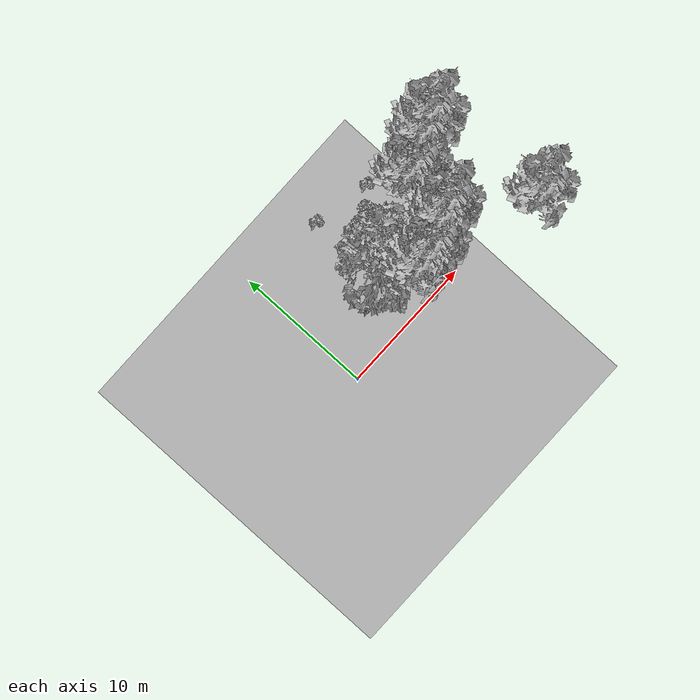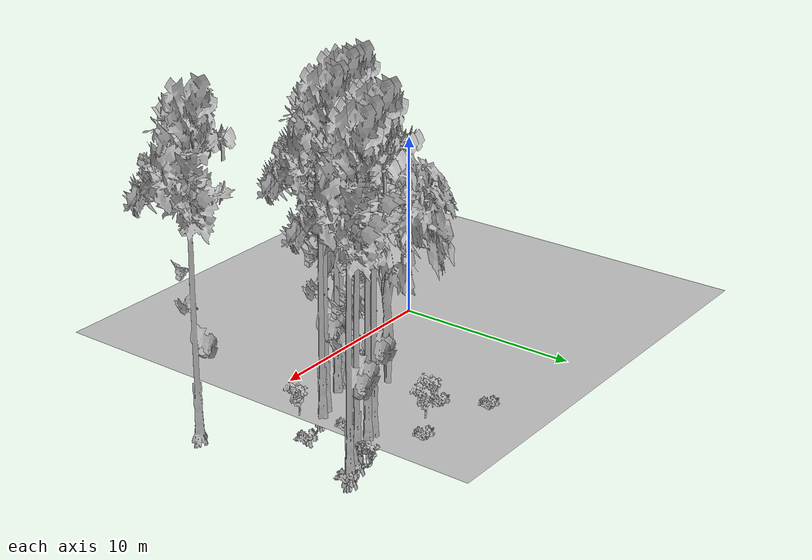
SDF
<sdf version="1.7">
 <world name="default">
  <model name="ground_plane">
   <static>1</static>
   <link name="link">
    <collision name="collision">
     <pose>-50 0 0 0 -0 0</pose>
     <geometry><plane><normal>0 0 1</normal><size>80 80</size></plane></geometry>
     <surface><contact><ode><min_depth>0.01</min_depth><max_vel>0</max_vel></ode></contact></surface>
    </collision>
    <visual name="grass">
     <cast_shadows>0</cast_shadows>
     <geometry>
      <mesh>
       <scale>0.46714285714285714 0.46714285714285714 0.1</scale>
       <uri>file://grass_plane/meshes/grass_plane.dae</uri>
      </mesh>
     </geometry>
    </visual>
   </link>
  </model>
  <model name="Tree 44">
   <static>1</static>
   <pose>8.104884163409068 2.35524495685614 0 1.57079 -0 0</pose>
   <link name="link">
    <collision name="collision">
     <geometry><mesh><scale>3.5 5 3.5</scale><uri>model://tree_9/meshes/tree_9.obj</uri></mesh></geometry>
    </collision>
    <visual name="visual">
     <geometry><mesh><scale>3.5 5 3.5</scale><uri>model://tree_9/meshes/tree_9.obj</uri></mesh></geometry>
    </visual>
   </link>
  </model>
  <model name="Tree 158">
   <static>1</static>
   <pose>11.713844889826014 6.629129231320988 0 1.57079 -0 0</pose>
   <link name="link">
    <collision name="collision">
     <geometry><mesh><scale>3.5 5 3.5</scale><uri>model://tree_9/meshes/tree_9.obj</uri></mesh></geometry>
    </collision>
    <visual name="visual">
     <geometry><mesh><scale>3.5 5 3.5</scale><uri>model://tree_9/meshes/tree_9.obj</uri></mesh></geometry>
    </visual>
   </link>
  </model>
  <model name="Tree 166">
   <static>1</static>
   <pose>12.168911704894818 6.643762547218145 0 1.57079 -0 0</pose>
   <link name="link">
    <collision name="collision">
     <geometry><mesh><scale>3.5 5 3.5</scale><uri>model://tree_9/meshes/tree_9.obj</uri></mesh></geometry>
    </collision>
    <visual name="visual">
     <geometry><mesh><scale>3.5 5 3.5</scale><uri>model://tree_9/meshes/tree_9.obj</uri></mesh></geometry>
    </visual>
   </link>
  </model>
  <model name="Tree 204">
   <static>1</static>
   <pose>7.048162597841895 3.9408010652331953 0 1.57079 -0 0</pose>
   <link name="link">
    <collision name="collision">
     <geometry><mesh><scale>3.5 5 3.5</scale><uri>model://tree_2/meshes/tree_2.obj</uri></mesh></geometry>
    </collision>
    <visual name="visual">
     <geometry><mesh><scale>3.5 5 3.5</scale><uri>model://tree_2/meshes/tree_2.obj</uri></mesh></geometry>
    </visual>
   </link>
  </model>
  <model name="Tree 208">
   <static>1</static>
   <pose>11.190981126561525 3.3659760933091434 0 1.57079 -0 0</pose>
   <link name="link">
    <collision name="collision">
     <geometry><mesh><scale>3.5 5 3.5</scale><uri>model://tree_9/meshes/tree_9.obj</uri></mesh></geometry>
    </collision>
    <visual name="visual">
     <geometry><mesh><scale>3.5 5 3.5</scale><uri>model://tree_9/meshes/tree_9.obj</uri></mesh></geometry>
    </visual>
   </link>
  </model>
  <model name="Tree 260">
   <static>1</static>
   <pose>14.136981972273553 7.557805364939618 0 1.57079 -0 0</pose>
   <link name="link">
    <collision name="collision">
     <geometry><mesh><scale>3.5 5 3.5</scale><uri>model://tree_9/meshes/tree_9.obj</uri></mesh></geometry>
    </collision>
    <visual name="visual">
     <geometry><mesh><scale>3.5 5 3.5</scale><uri>model://tree_9/meshes/tree_9.obj</uri></mesh></geometry>
    </visual>
   </link>
  </model>
  <model name="Tree 321">
   <static>1</static>
   <pose>9.371777629878572 2.574047390070774 0 1.57079 -0 0</pose>
   <link name="link">
    <collision name="collision">
     <geometry><mesh><scale>3.5 5 3.5</scale><uri>model://tree_9/meshes/tree_9.obj</uri></mesh></geometry>
    </collision>
    <visual name="visual">
     <geometry><mesh><scale>3.5 5 3.5</scale><uri>model://tree_9/meshes/tree_9.obj</uri></mesh></geometry>
    </visual>
   </link>
  </model>
  <model name="Tree 375">
   <static>1</static>
   <pose>8.913608443224653 2.4639413548847955 0 1.57079 -0 0</pose>
   <link name="link">
    <collision name="collision">
     <geometry><mesh><scale>3.5 5 3.5</scale><uri>model://tree_9/meshes/tree_9.obj</uri></mesh></geometry>
    </collision>
    <visual name="visual">
     <geometry><mesh><scale>3.5 5 3.5</scale><uri>model://tree_9/meshes/tree_9.obj</uri></mesh></geometry>
    </visual>
   </link>
  </model>
  <model name="Tree 430">
   <static>1</static>
   <pose>15.264585123151882 8.027316081117142 0 1.57079 -0 0</pose>
   <link name="link">
    <collision name="collision">
     <geometry><mesh><scale>3.5 5 3.5</scale><uri>model://tree_9/meshes/tree_9.obj</uri></mesh></geometry>
    </collision>
    <visual name="visual">
     <geometry><mesh><scale>3.5 5 3.5</scale><uri>model://tree_9/meshes/tree_9.obj</uri></mesh></geometry>
    </visual>
   </link>
  </model>
  <model name="Tree 507">
   <static>1</static>
   <pose>16.38900607442757 -0.08094478798185634 0 1.57079 -0 0</pose>
   <link name="link">
    <collision name="collision">
     <geometry><mesh><scale>3.5 5 3.5</scale><uri>model://tree_9/meshes/tree_9.obj</uri></mesh></geometry>
    </collision>
    <visual name="visual">
     <geometry><mesh><scale>3.5 5 3.5</scale><uri>model://tree_9/meshes/tree_9.obj</uri></mesh></geometry>
    </visual>
   </link>
  </model>
  <model name="Tree 574">
   <static>1</static>
   <pose>11.78542882819714 3.610151597876353 0 1.57079 -0 0</pose>
   <link name="link">
    <collision name="collision">
     <geometry><mesh><scale>3.5 5 3.5</scale><uri>model://tree_9/meshes/tree_9.obj</uri></mesh></geometry>
    </collision>
    <visual name="visual">
     <geometry><mesh><scale>3.5 5 3.5</scale><uri>model://tree_9/meshes/tree_9.obj</uri></mesh></geometry>
    </visual>
   </link>
  </model>
  <model name="Bush 10">
   <static>1</static>
   <pose>15.373897263675289 7.971833022197146 0 1.57079 -0 0</pose>
   <link name="link">
    <collision name="collision">
     <geometry><mesh><scale>2 2 2</scale><uri>model://bush_2/meshes/bush_2.obj</uri></mesh></geometry>
     <surface><contact><collide_without_contact>false</collide_without_contact></contact></surface>
    </collision>
    <visual name="visual">
     <geometry><mesh><scale>2 2 2</scale><uri>model://bush_2/meshes/bush_2.obj</uri></mesh></geometry>
    </visual>
   </link>
  </model>
  <model name="Bush 32">
   <static>1</static>
   <pose>10.320035283015898 8.507685383179208 0 1.57079 -0 0</pose>
   <link name="link">
    <collision name="collision">
     <geometry><mesh><scale>2 2 2</scale><uri>model://bush_2/meshes/bush_2.obj</uri></mesh></geometry>
     <surface><contact><collide_without_contact>false</collide_without_contact></contact></surface>
    </collision>
    <visual name="visual">
     <geometry><mesh><scale>2 2 2</scale><uri>model://bush_2/meshes/bush_2.obj</uri></mesh></geometry>
    </visual>
   </link>
  </model>
  <model name="Bush 96">
   <static>1</static>
   <pose>9.020985388943195 7.654055128683233 0 1.57079 -0 0</pose>
   <link name="link">
    <collision name="collision">
     <geometry><mesh><scale>2 2 2</scale><uri>model://bush_5/meshes/bush_5.obj</uri></mesh></geometry>
     <surface><contact><collide_without_contact>false</collide_without_contact></contact></surface>
    </collision>
    <visual name="visual">
     <geometry><mesh><scale>2 2 2</scale><uri>model://bush_5/meshes/bush_5.obj</uri></mesh></geometry>
    </visual>
   </link>
  </model>
  <model name="Bush 109">
   <static>1</static>
   <pose>5.700919009603403 1.4560747852693723 0 1.57079 -0 0</pose>
   <link name="link">
    <collision name="collision">
     <geometry><mesh><scale>2 2 2</scale><uri>model://bush_2/meshes/bush_2.obj</uri></mesh></geometry>
     <surface><contact><collide_without_contact>false</collide_without_contact></contact></surface>
    </collision>
    <visual name="visual">
     <geometry><mesh><scale>2 2 2</scale><uri>model://bush_2/meshes/bush_2.obj</uri></mesh></geometry>
    </visual>
   </link>
  </model>
  <model name="Bush 122">
   <static>1</static>
   <pose>11.806799610336931 5.025317506184237 0 1.57079 -0 0</pose>
   <link name="link">
    <collision name="collision">
     <geometry><mesh><scale>2 2 2</scale><uri>model://bush_2/meshes/bush_2.obj</uri></mesh></geometry>
     <surface><contact><collide_without_contact>false</collide_without_contact></contact></surface>
    </collision>
    <visual name="visual">
     <geometry><mesh><scale>2 2 2</scale><uri>model://bush_2/meshes/bush_2.obj</uri></mesh></geometry>
    </visual>
   </link>
  </model>
  <model name="Bush 160">
   <static>1</static>
   <pose>7.274604054346 7.225742331765147 0 1.57079 -0 0</pose>
   <link name="link">
    <collision name="collision">
     <geometry><mesh><scale>2 2 2</scale><uri>model://bush_2/meshes/bush_2.obj</uri></mesh></geometry>
     <surface><contact><collide_without_contact>false</collide_without_contact></contact></surface>
    </collision>
    <visual name="visual">
     <geometry><mesh><scale>2 2 2</scale><uri>model://bush_2/meshes/bush_2.obj</uri></mesh></geometry>
    </visual>
   </link>
  </model>
  <model name="Bush 211">
   <static>1</static>
   <pose>13.822849930836774 4.3157827599664245 0 1.57079 -0 0</pose>
   <link name="link">
    <collision name="collision">
     <geometry><mesh><scale>2 2 2</scale><uri>model://bush_2/meshes/bush_2.obj</uri></mesh></geometry>
     <surface><contact><collide_without_contact>false</collide_without_contact></contact></surface>
    </collision>
    <visual name="visual">
     <geometry><mesh><scale>2 2 2</scale><uri>model://bush_2/meshes/bush_2.obj</uri></mesh></geometry>
    </visual>
   </link>
  </model>
  <model name="Bush 304">
   <static>1</static>
   <pose>6.077297270425511 9.326940689627357 0 1.57079 -0 0</pose>
   <link name="link">
    <collision name="collision">
     <geometry><mesh><scale>2 2 2</scale><uri>model://bush_2/meshes/bush_2.obj</uri></mesh></geometry>
     <surface><contact><collide_without_contact>false</collide_without_contact></contact></surface>
    </collision>
    <visual name="visual">
     <geometry><mesh><scale>2 2 2</scale><uri>model://bush_2/meshes/bush_2.obj</uri></mesh></geometry>
    </visual>
   </link>
  </model>
  <model name="Bush 365">
   <static>1</static>
   <pose>7.609039362531426 1.9565149035348242 0 1.57079 -0 0</pose>
   <link name="link">
    <collision name="collision">
     <geometry><mesh><scale>2 2 2</scale><uri>model://bush_2/meshes/bush_2.obj</uri></mesh></geometry>
     <surface><contact><collide_without_contact>false</collide_without_contact></contact></surface>
    </collision>
    <visual name="visual">
     <geometry><mesh><scale>2 2 2</scale><uri>model://bush_2/meshes/bush_2.obj</uri></mesh></geometry>
    </visual>
   </link>
  </model>
  <model name="Bush 388">
   <static>1</static>
   <pose>7.925541037397643 7.292594110846451 0 1.57079 -0 0</pose>
   <link name="link">
    <collision name="collision">
     <geometry><mesh><scale>2 2 2</scale><uri>model://bush_5/meshes/bush_5.obj</uri></mesh></geometry>
     <surface><contact><collide_without_contact>false</collide_without_contact></contact></surface>
    </collision>
    <visual name="visual">
     <geometry><mesh><scale>2 2 2</scale><uri>model://bush_5/meshes/bush_5.obj</uri></mesh></geometry>
    </visual>
   </link>
  </model>
  <model name="Bush 521">
   <static>1</static>
   <pose>12.385037688290602 2.643147483500684 0 1.57079 -0 0</pose>
   <link name="link">
    <collision name="collision">
     <geometry><mesh><scale>2 2 2</scale><uri>model://bush_5/meshes/bush_5.obj</uri></mesh></geometry>
     <surface><contact><collide_without_contact>false</collide_without_contact></contact></surface>
    </collision>
    <visual name="visual">
     <geometry><mesh><scale>2 2 2</scale><uri>model://bush_5/meshes/bush_5.obj</uri></mesh></geometry>
    </visual>
   </link>
  </model>
  <model name="Bush 547">
   <static>1</static>
   <pose>14.209458171367324 8.132519676451757 0 1.57079 -0 0</pose>
   <link name="link">
    <collision name="collision">
     <geometry><mesh><scale>2 2 2</scale><uri>model://bush_4/meshes/bush_4.obj</uri></mesh></geometry>
     <surface><contact><collide_without_contact>false</collide_without_contact></contact></surface>
    </collision>
    <visual name="visual">
     <geometry><mesh><scale>2 2 2</scale><uri>model://bush_4/meshes/bush_4.obj</uri></mesh></geometry>
    </visual>
   </link>
  </model>
 </world>
</sdf>
